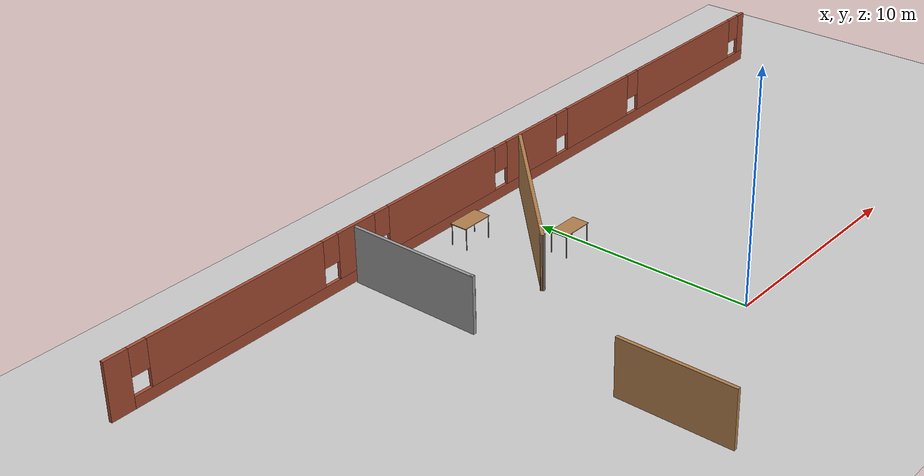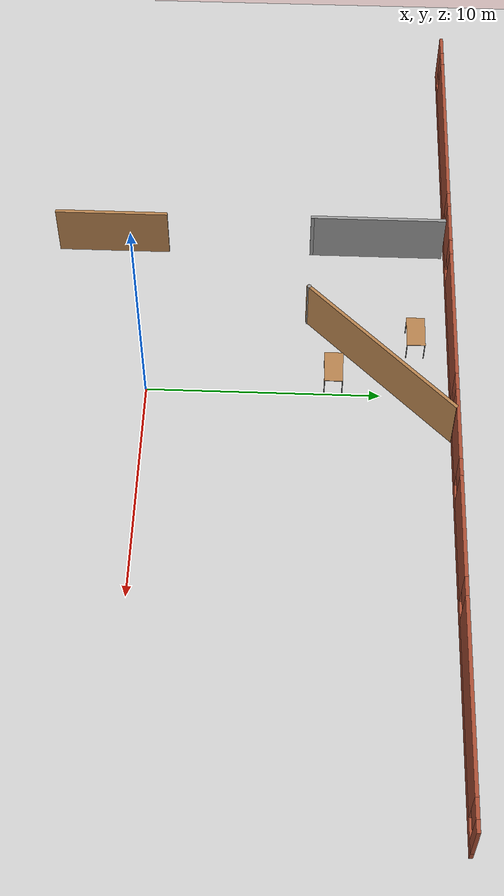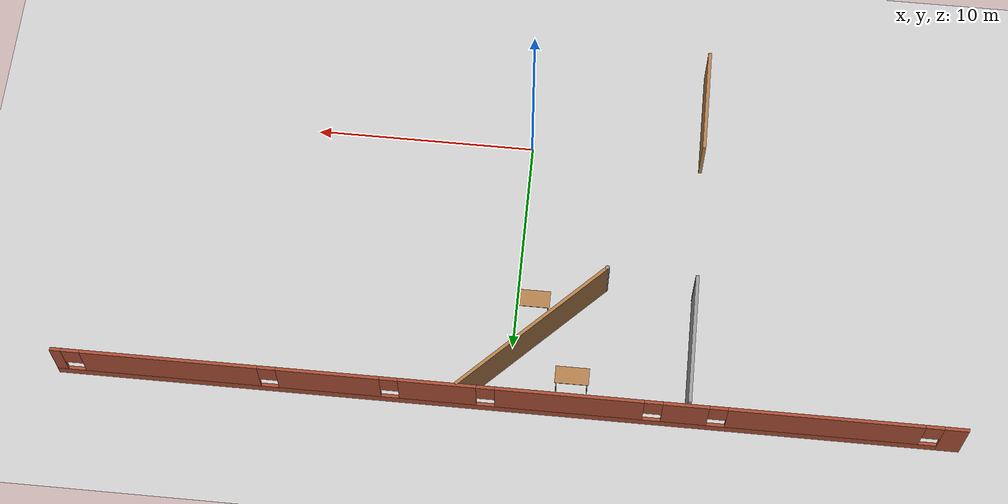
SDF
<sdf version="1.6">
 <world name="default">
  <model name="ground_plane">
   <static>1</static>
   <link name="link">
    <collision name="collision">
     <geometry><plane><normal>0 0 1</normal><size>100 100</size></plane></geometry>
     <surface>
      <contact><collide_bitmask>65535</collide_bitmask></contact>
      <friction><ode><mu>100</mu><mu2>50</mu2></ode></friction>
     </surface>
    </collision>
    <visual name="visual">
     <cast_shadows>0</cast_shadows>
     <geometry><plane><normal>0 0 1</normal><size>100 100</size></plane></geometry>
     <material>
      <script><uri>file://media/materials/scripts/gazebo.material</uri><name>Gazebo/Grey</name></script>
     </material>
    </visual>
   </link>
  </model>
  <model name="table">
   <static>1</static>
   <link name="link">
    <collision name="surface">
     <pose>0 0 1 0 -0 0</pose>
     <geometry><box><size>1.5 0.8 0.03</size></box></geometry>
     <surface><friction><ode><mu>0.6</mu><mu2>0.6</mu2></ode></friction></surface>
    </collision>
    <visual name="visual1">
     <pose>0 0 1 0 -0 0</pose>
     <geometry><box><size>1.5 0.8 0.03</size></box></geometry>
     <material>
      <script><uri>file://media/materials/scripts/gazebo.material</uri><name>Gazebo/Wood</name></script>
     </material>
    </visual>
    <collision name="front_left_leg">
     <pose>0.68 0.38 0.5 0 -0 0</pose>
     <geometry><cylinder><radius>0.02</radius><length>1</length></cylinder></geometry>
    </collision>
    <visual name="front_left_leg">
     <pose>0.68 0.38 0.5 0 -0 0</pose>
     <geometry><cylinder><radius>0.02</radius><length>1</length></cylinder></geometry>
     <material>
      <script><uri>file://media/materials/scripts/gazebo.material</uri><name>Gazebo/Grey</name></script>
     </material>
    </visual>
    <collision name="front_right_leg">
     <pose>0.68 -0.38 0.5 0 -0 0</pose>
     <geometry><cylinder><radius>0.02</radius><length>1</length></cylinder></geometry>
    </collision>
    <visual name="front_right_leg">
     <pose>0.68 -0.38 0.5 0 -0 0</pose>
     <geometry><cylinder><radius>0.02</radius><length>1</length></cylinder></geometry>
     <material>
      <script><uri>file://media/materials/scripts/gazebo.material</uri><name>Gazebo/Grey</name></script>
     </material>
    </visual>
    <collision name="back_right_leg">
     <pose>-0.68 -0.38 0.5 0 -0 0</pose>
     <geometry><cylinder><radius>0.02</radius><length>1</length></cylinder></geometry>
    </collision>
    <visual name="back_right_leg">
     <pose>-0.68 -0.38 0.5 0 -0 0</pose>
     <geometry><cylinder><radius>0.02</radius><length>1</length></cylinder></geometry>
     <material>
      <script><uri>file://media/materials/scripts/gazebo.material</uri><name>Gazebo/Grey</name></script>
     </material>
    </visual>
    <collision name="back_left_leg">
     <pose>-0.68 0.38 0.5 0 -0 0</pose>
     <geometry><cylinder><radius>0.02</radius><length>1</length></cylinder></geometry>
    </collision>
    <visual name="back_left_leg">
     <pose>-0.68 0.38 0.5 0 -0 0</pose>
     <geometry><cylinder><radius>0.02</radius><length>1</length></cylinder></geometry>
     <material>
      <script><uri>file://media/materials/scripts/gazebo.material</uri><name>Gazebo/Grey</name></script>
     </material>
    </visual>
   </link>
   <pose>-2.77138 11.5368 0 0 -0 0</pose>
  </model>
  <model name="table_3">
   <static>1</static>
   <link name="link">
    <collision name="surface">
     <pose>0 0 1 0 -0 0</pose>
     <geometry><box><size>1.5 0.8 0.03</size></box></geometry>
     <surface><friction><ode><mu>0.6</mu><mu2>0.6</mu2></ode></friction></surface>
    </collision>
    <visual name="visual1">
     <pose>0 0 1 0 -0 0</pose>
     <geometry><box><size>1.5 0.8 0.03</size></box></geometry>
     <material>
      <script><uri>file://media/materials/scripts/gazebo.material</uri><name>Gazebo/Wood</name></script>
     </material>
    </visual>
    <collision name="front_left_leg">
     <pose>0.68 0.38 0.5 0 -0 0</pose>
     <geometry><cylinder><radius>0.02</radius><length>1</length></cylinder></geometry>
    </collision>
    <visual name="front_left_leg">
     <pose>0.68 0.38 0.5 0 -0 0</pose>
     <geometry><cylinder><radius>0.02</radius><length>1</length></cylinder></geometry>
     <material>
      <script><uri>file://media/materials/scripts/gazebo.material</uri><name>Gazebo/Grey</name></script>
     </material>
    </visual>
    <collision name="front_right_leg">
     <pose>0.68 -0.38 0.5 0 -0 0</pose>
     <geometry><cylinder><radius>0.02</radius><length>1</length></cylinder></geometry>
    </collision>
    <visual name="front_right_leg">
     <pose>0.68 -0.38 0.5 0 -0 0</pose>
     <geometry><cylinder><radius>0.02</radius><length>1</length></cylinder></geometry>
     <material>
      <script><uri>file://media/materials/scripts/gazebo.material</uri><name>Gazebo/Grey</name></script>
     </material>
    </visual>
    <collision name="back_right_leg">
     <pose>-0.68 -0.38 0.5 0 -0 0</pose>
     <geometry><cylinder><radius>0.02</radius><length>1</length></cylinder></geometry>
    </collision>
    <visual name="back_right_leg">
     <pose>-0.68 -0.38 0.5 0 -0 0</pose>
     <geometry><cylinder><radius>0.02</radius><length>1</length></cylinder></geometry>
     <material>
      <script><uri>file://media/materials/scripts/gazebo.material</uri><name>Gazebo/Grey</name></script>
     </material>
    </visual>
    <collision name="back_left_leg">
     <pose>-0.68 0.38 0.5 0 -0 0</pose>
     <geometry><cylinder><radius>0.02</radius><length>1</length></cylinder></geometry>
    </collision>
    <visual name="back_left_leg">
     <pose>-0.68 0.38 0.5 0 -0 0</pose>
     <geometry><cylinder><radius>0.02</radius><length>1</length></cylinder></geometry>
     <material>
      <script><uri>file://media/materials/scripts/gazebo.material</uri><name>Gazebo/Grey</name></script>
     </material>
    </visual>
   </link>
   <pose>-0.746225 8.0046 0 0 -0 0</pose>
  </model>
  <model name="mybuilding">
   <link name="Wall_45">
    <pose>0.001293 8.80756 0 0 -0 0</pose>
    <visual name="Wall_45_Visual_11">
     <pose>-6.39577 0 1.9 0 -0 0</pose>
     <geometry><box><size>0.8 0.15 1.2</size></box></geometry>
     <material>
      <script><uri>file://media/materials/scripts/gazebo.material</uri><name>Gazebo/Bricks</name></script>
      <ambient>1 1 1 1</ambient>
      <shader type="pixel"/>
      <diffuse>1 1 1 1</diffuse>
      <specular>0.2 0.2 0.2 1</specular>
      <emissive>0 0 0 1</emissive>
     </material>
     <meta><layer>0</layer></meta>
    </visual>
    <visual name="Wall_45_Visual_0">
     <pose>-19.352 0 1.25 0 -0 0</pose>
     <geometry><box><size>1.04606 0.15 2.5</size></box></geometry>
     <material>
      <script><uri>file://media/materials/scripts/gazebo.material</uri><name>Gazebo/Bricks</name></script>
      <ambient>1 1 1 1</ambient>
      <shader type="pixel"/>
      <diffuse>1 1 1 1</diffuse>
      <specular>0.2 0.2 0.2 1</specular>
      <emissive>0 0 0 1</emissive>
     </material>
     <meta><layer>0</layer></meta>
    </visual>
    <visual name="Wall_45_Visual_1">
     <pose>0.523032 0 0.25 0 -0 0</pose>
     <geometry><box><size>38.7039 0.15 0.5</size></box></geometry>
     <material>
      <script><uri>file://media/materials/scripts/gazebo.material</uri><name>Gazebo/Bricks</name></script>
      <ambient>1 1 1 1</ambient>
      <shader type="pixel"/>
      <diffuse>1 1 1 1</diffuse>
      <specular>0.2 0.2 0.2 1</specular>
      <emissive>0 0 0 1</emissive>
     </material>
     <meta><layer>0</layer></meta>
    </visual>
    <visual name="Wall_45_Visual_2">
     <pose>-13.8116 0 1.5 0 -0 0</pose>
     <geometry><box><size>8.43475 0.15 2</size></box></geometry>
     <material>
      <script><uri>file://media/materials/scripts/gazebo.material</uri><name>Gazebo/Bricks</name></script>
      <ambient>1 1 1 1</ambient>
      <shader type="pixel"/>
      <diffuse>1 1 1 1</diffuse>
      <specular>0.2 0.2 0.2 1</specular>
      <emissive>0 0 0 1</emissive>
     </material>
     <meta><layer>0</layer></meta>
    </visual>
    <visual name="Wall_45_Visual_3">
     <pose>-7.79498 0 1.5 0 -0 0</pose>
     <geometry><box><size>1.99841 0.15 2</size></box></geometry>
     <material>
      <script><uri>file://media/materials/scripts/gazebo.material</uri><name>Gazebo/Bricks</name></script>
      <ambient>1 1 1 1</ambient>
      <shader type="pixel"/>
      <diffuse>1 1 1 1</diffuse>
      <specular>0.2 0.2 0.2 1</specular>
      <emissive>0 0 0 1</emissive>
     </material>
     <meta><layer>0</layer></meta>
    </visual>
    <visual name="Wall_45_Visual_4">
     <pose>-2.75784 0 1.5 0 -0 0</pose>
     <geometry><box><size>6.47587 0.15 2</size></box></geometry>
     <material>
      <script><uri>file://media/materials/scripts/gazebo.material</uri><name>Gazebo/Bricks</name></script>
      <ambient>1 1 1 1</ambient>
      <shader type="pixel"/>
      <diffuse>1 1 1 1</diffuse>
      <specular>0.2 0.2 0.2 1</specular>
      <emissive>0 0 0 1</emissive>
     </material>
     <meta><layer>0</layer></meta>
    </visual>
    <visual name="Wall_45_Visual_5">
     <pose>2.9789 0 1.5 0 -0 0</pose>
     <geometry><box><size>3.39762 0.15 2</size></box></geometry>
     <material>
      <script><uri>file://media/materials/scripts/gazebo.material</uri><name>Gazebo/Bricks</name></script>
      <ambient>1 1 1 1</ambient>
      <shader type="pixel"/>
      <diffuse>1 1 1 1</diffuse>
      <specular>0.2 0.2 0.2 1</specular>
      <emissive>0 0 0 1</emissive>
     </material>
     <meta><layer>0</layer></meta>
    </visual>
    <visual name="Wall_45_Visual_6">
     <pose>7.7362 0 1.5 0 -0 0</pose>
     <geometry><box><size>4.51698 0.15 2</size></box></geometry>
     <material>
      <script><uri>file://media/materials/scripts/gazebo.material</uri><name>Gazebo/Bricks</name></script>
      <ambient>1 1 1 1</ambient>
      <shader type="pixel"/>
      <diffuse>1 1 1 1</diffuse>
      <specular>0.2 0.2 0.2 1</specular>
      <emissive>0 0 0 1</emissive>
     </material>
     <meta><layer>0</layer></meta>
    </visual>
    <visual name="Wall_45_Visual_7">
     <pose>14.6891 0 1.5 0 -0 0</pose>
     <geometry><box><size>7.78879 0.15 2</size></box></geometry>
     <material>
      <script><uri>file://media/materials/scripts/gazebo.material</uri><name>Gazebo/Bricks</name></script>
      <ambient>1 1 1 1</ambient>
      <shader type="pixel"/>
      <diffuse>1 1 1 1</diffuse>
      <specular>0.2 0.2 0.2 1</specular>
      <emissive>0 0 0 1</emissive>
     </material>
     <meta><layer>0</layer></meta>
    </visual>
    <visual name="Wall_45_Visual_8">
     <pose>19.6292 0 1.5 0 -0 0</pose>
     <geometry><box><size>0.491526 0.15 2</size></box></geometry>
     <material>
      <script><uri>file://media/materials/scripts/gazebo.material</uri><name>Gazebo/Bricks</name></script>
      <ambient>1 1 1 1</ambient>
      <shader type="pixel"/>
      <diffuse>1 1 1 1</diffuse>
      <specular>0.2 0.2 0.2 1</specular>
      <emissive>0 0 0 1</emissive>
     </material>
     <meta><layer>0</layer></meta>
    </visual>
    <visual name="Wall_45_Visual_9">
     <pose>-18.4289 0 1.9 0 -0 0</pose>
     <geometry><box><size>0.8 0.15 1.2</size></box></geometry>
     <material>
      <script><uri>file://media/materials/scripts/gazebo.material</uri><name>Gazebo/Bricks</name></script>
      <ambient>1 1 1 1</ambient>
      <shader type="pixel"/>
      <diffuse>1 1 1 1</diffuse>
      <specular>0.2 0.2 0.2 1</specular>
      <emissive>0 0 0 1</emissive>
     </material>
     <meta><layer>0</layer></meta>
    </visual>
    <visual name="Wall_45_Visual_10">
     <pose>-9.19418 0 1.9 0 -0 0</pose>
     <geometry><box><size>0.8 0.15 1.2</size></box></geometry>
     <material>
      <script><uri>file://media/materials/scripts/gazebo.material</uri><name>Gazebo/Bricks</name></script>
      <ambient>1 1 1 1</ambient>
      <shader type="pixel"/>
      <diffuse>1 1 1 1</diffuse>
      <specular>0.2 0.2 0.2 1</specular>
      <emissive>0 0 0 1</emissive>
     </material>
     <meta><layer>0</layer></meta>
    </visual>
    <visual name="Wall_45_Visual_12">
     <pose>0.880093 0 1.9 0 -0 0</pose>
     <geometry><box><size>0.8 0.15 1.2</size></box></geometry>
     <material>
      <script><uri>file://media/materials/scripts/gazebo.material</uri><name>Gazebo/Bricks</name></script>
      <ambient>1 1 1 1</ambient>
      <shader type="pixel"/>
      <diffuse>1 1 1 1</diffuse>
      <specular>0.2 0.2 0.2 1</specular>
      <emissive>0 0 0 1</emissive>
     </material>
     <meta><layer>0</layer></meta>
    </visual>
    <visual name="Wall_45_Visual_13">
     <pose>5.07771 0 1.9 0 -0 0</pose>
     <geometry><box><size>0.8 0.15 1.2</size></box></geometry>
     <material>
      <script><uri>file://media/materials/scripts/gazebo.material</uri><name>Gazebo/Bricks</name></script>
      <ambient>1 1 1 1</ambient>
      <shader type="pixel"/>
      <diffuse>1 1 1 1</diffuse>
      <specular>0.2 0.2 0.2 1</specular>
      <emissive>0 0 0 1</emissive>
     </material>
     <meta><layer>0</layer></meta>
    </visual>
    <visual name="Wall_45_Visual_14">
     <pose>10.3947 0 1.9 0 -0 0</pose>
     <geometry><box><size>0.8 0.15 1.2</size></box></geometry>
     <material>
      <script><uri>file://media/materials/scripts/gazebo.material</uri><name>Gazebo/Bricks</name></script>
      <ambient>1 1 1 1</ambient>
      <shader type="pixel"/>
      <diffuse>1 1 1 1</diffuse>
      <specular>0.2 0.2 0.2 1</specular>
      <emissive>0 0 0 1</emissive>
     </material>
     <meta><layer>0</layer></meta>
    </visual>
    <visual name="Wall_45_Visual_15">
     <pose>18.9835 0 1.9 0 -0 0</pose>
     <geometry><box><size>0.8 0.15 1.2</size></box></geometry>
     <material>
      <script><uri>file://media/materials/scripts/gazebo.material</uri><name>Gazebo/Bricks</name></script>
      <ambient>1 1 1 1</ambient>
      <shader type="pixel"/>
      <diffuse>1 1 1 1</diffuse>
      <specular>0.2 0.2 0.2 1</specular>
      <emissive>0 0 0 1</emissive>
     </material>
     <meta><layer>0</layer></meta>
    </visual>
    <collision name="Wall_45_Collision_0">
     <pose>-19.352 0 1.25 0 -0 0</pose>
     <geometry><box><size>1.04606 0.15 2.5</size></box></geometry>
     <surface>
      <friction>
       <ode><mu>1</mu><mu2>1</mu2><fdir1>0 0 0</fdir1><slip1>0</slip1><slip2>0</slip2></ode>
       <torsional>
        <coefficient>1</coefficient>
        <patch_radius>0</patch_radius>
        <surface_radius>0</surface_radius>
        <use_patch_radius>1</use_patch_radius>
        <ode><slip>0</slip></ode>
       </torsional>
      </friction>
      <bounce><restitution_coefficient>0</restitution_coefficient><threshold>1e+06</threshold></bounce>
      <contact>
       <collide_without_contact>0</collide_without_contact>
       <collide_without_contact_bitmask>1</collide_without_contact_bitmask>
       <collide_bitmask>1</collide_bitmask>
       <ode>
        <soft_cfm>0</soft_cfm>
        <soft_erp>0.2</soft_erp>
        <kp>1e+13</kp>
        <kd>1</kd>
        <max_vel>0.01</max_vel>
        <min_depth>0</min_depth>
       </ode>
       <bullet>
        <split_impulse>1</split_impulse>
        <split_impulse_penetration_threshold>-0.01</split_impulse_penetration_threshold>
        <soft_cfm>0</soft_cfm>
        <soft_erp>0.2</soft_erp>
        <kp>1e+13</kp>
        <kd>1</kd>
       </bullet>
      </contact>
     </surface>
    </collision>
    <collision name="Wall_45_Collision_1">
     <pose>0.523032 0 0.25 0 -0 0</pose>
     <geometry><box><size>38.7039 0.15 0.5</size></box></geometry>
     <surface>
      <friction>
       <ode><mu>1</mu><mu2>1</mu2><fdir1>0 0 0</fdir1><slip1>0</slip1><slip2>0</slip2></ode>
       <torsional>
        <coefficient>1</coefficient>
        <patch_radius>0</patch_radius>
        <surface_radius>0</surface_radius>
        <use_patch_radius>1</use_patch_radius>
        <ode><slip>0</slip></ode>
       </torsional>
      </friction>
      <bounce><restitution_coefficient>0</restitution_coefficient><threshold>1e+06</threshold></bounce>
      <contact>
       <collide_without_contact>0</collide_without_contact>
       <collide_without_contact_bitmask>1</collide_without_contact_bitmask>
       <collide_bitmask>1</collide_bitmask>
       <ode>
        <soft_cfm>0</soft_cfm>
        <soft_erp>0.2</soft_erp>
        <kp>1e+13</kp>
        <kd>1</kd>
        <max_vel>0.01</max_vel>
        <min_depth>0</min_depth>
       </ode>
       <bullet>
        <split_impulse>1</split_impulse>
        <split_impulse_penetration_threshold>-0.01</split_impulse_penetration_threshold>
        <soft_cfm>0</soft_cfm>
        <soft_erp>0.2</soft_erp>
        <kp>1e+13</kp>
        <kd>1</kd>
       </bullet>
      </contact>
     </surface>
    </collision>
    <collision name="Wall_45_Collision_2">
     <pose>-13.8116 0 1.5 0 -0 0</pose>
     <geometry><box><size>8.43475 0.15 2</size></box></geometry>
     <surface>
      <friction>
       <ode><mu>1</mu><mu2>1</mu2><fdir1>0 0 0</fdir1><slip1>0</slip1><slip2>0</slip2></ode>
       <torsional>
        <coefficient>1</coefficient>
        <patch_radius>0</patch_radius>
        <surface_radius>0</surface_radius>
        <use_patch_radius>1</use_patch_radius>
        <ode><slip>0</slip></ode>
       </torsional>
      </friction>
      <bounce><restitution_coefficient>0</restitution_coefficient><threshold>1e+06</threshold></bounce>
      <contact>
       <collide_without_contact>0</collide_without_contact>
       <collide_without_contact_bitmask>1</collide_without_contact_bitmask>
       <collide_bitmask>1</collide_bitmask>
       <ode>
        <soft_cfm>0</soft_cfm>
        <soft_erp>0.2</soft_erp>
        <kp>1e+13</kp>
        <kd>1</kd>
        <max_vel>0.01</max_vel>
        <min_depth>0</min_depth>
       </ode>
       <bullet>
        <split_impulse>1</split_impulse>
        <split_impulse_penetration_threshold>-0.01</split_impulse_penetration_threshold>
        <soft_cfm>0</soft_cfm>
        <soft_erp>0.2</soft_erp>
        <kp>1e+13</kp>
        <kd>1</kd>
       </bullet>
      </contact>
     </surface>
    </collision>
    <collision name="Wall_45_Collision_4">
     <pose>-2.75784 0 1.5 0 -0 0</pose>
     <geometry><box><size>6.47587 0.15 2</size></box></geometry>
     <surface>
      <friction>
       <ode><mu>1</mu><mu2>1</mu2><fdir1>0 0 0</fdir1><slip1>0</slip1><slip2>0</slip2></ode>
       <torsional>
        <coefficient>1</coefficient>
        <patch_radius>0</patch_radius>
        <surface_radius>0</surface_radius>
        <use_patch_radius>1</use_patch_radius>
        <ode><slip>0</slip></ode>
       </torsional>
      </friction>
      <bounce><restitution_coefficient>0</restitution_coefficient><threshold>1e+06</threshold></bounce>
      <contact>
       <collide_without_contact>0</collide_without_contact>
       <collide_without_contact_bitmask>1</collide_without_contact_bitmask>
       <collide_bitmask>1</collide_bitmask>
       <ode>
        <soft_cfm>0</soft_cfm>
        <soft_erp>0.2</soft_erp>
        <kp>1e+13</kp>
        <kd>1</kd>
        <max_vel>0.01</max_vel>
        <min_depth>0</min_depth>
       </ode>
       <bullet>
        <split_impulse>1</split_impulse>
        <split_impulse_penetration_threshold>-0.01</split_impulse_penetration_threshold>
        <soft_cfm>0</soft_cfm>
        <soft_erp>0.2</soft_erp>
        <kp>1e+13</kp>
        <kd>1</kd>
       </bullet>
      </contact>
     </surface>
    </collision>
    <collision name="Wall_45_Collision_3">
     <pose>-7.79498 0 1.5 0 -0 0</pose>
     <geometry><box><size>1.99841 0.15 2</size></box></geometry>
     <surface>
      <friction>
       <ode><mu>1</mu><mu2>1</mu2><fdir1>0 0 0</fdir1><slip1>0</slip1><slip2>0</slip2></ode>
       <torsional>
        <coefficient>1</coefficient>
        <patch_radius>0</patch_radius>
        <surface_radius>0</surface_radius>
        <use_patch_radius>1</use_patch_radius>
        <ode><slip>0</slip></ode>
       </torsional>
      </friction>
      <bounce><restitution_coefficient>0</restitution_coefficient><threshold>1e+06</threshold></bounce>
      <contact>
       <collide_without_contact>0</collide_without_contact>
       <collide_without_contact_bitmask>1</collide_without_contact_bitmask>
       <collide_bitmask>1</collide_bitmask>
       <ode>
        <soft_cfm>0</soft_cfm>
        <soft_erp>0.2</soft_erp>
        <kp>1e+13</kp>
        <kd>1</kd>
        <max_vel>0.01</max_vel>
        <min_depth>0</min_depth>
       </ode>
       <bullet>
        <split_impulse>1</split_impulse>
        <split_impulse_penetration_threshold>-0.01</split_impulse_penetration_threshold>
        <soft_cfm>0</soft_cfm>
        <soft_erp>0.2</soft_erp>
        <kp>1e+13</kp>
        <kd>1</kd>
       </bullet>
      </contact>
     </surface>
    </collision>
    <collision name="Wall_45_Collision_5">
     <pose>2.9789 0 1.5 0 -0 0</pose>
     <geometry><box><size>3.39762 0.15 2</size></box></geometry>
     <surface>
      <friction>
       <ode><mu>1</mu><mu2>1</mu2><fdir1>0 0 0</fdir1><slip1>0</slip1><slip2>0</slip2></ode>
       <torsional>
        <coefficient>1</coefficient>
        <patch_radius>0</patch_radius>
        <surface_radius>0</surface_radius>
        <use_patch_radius>1</use_patch_radius>
        <ode><slip>0</slip></ode>
       </torsional>
      </friction>
      <bounce><restitution_coefficient>0</restitution_coefficient><threshold>1e+06</threshold></bounce>
      <contact>
       <collide_without_contact>0</collide_without_contact>
       <collide_without_contact_bitmask>1</collide_without_contact_bitmask>
       <collide_bitmask>1</collide_bitmask>
       <ode>
        <soft_cfm>0</soft_cfm>
        <soft_erp>0.2</soft_erp>
        <kp>1e+13</kp>
        <kd>1</kd>
        <max_vel>0.01</max_vel>
        <min_depth>0</min_depth>
       </ode>
       <bullet>
        <split_impulse>1</split_impulse>
        <split_impulse_penetration_threshold>-0.01</split_impulse_penetration_threshold>
        <soft_cfm>0</soft_cfm>
        <soft_erp>0.2</soft_erp>
        <kp>1e+13</kp>
        <kd>1</kd>
       </bullet>
      </contact>
     </surface>
    </collision>
    <collision name="Wall_45_Collision_6">
     <pose>7.7362 0 1.5 0 -0 0</pose>
     <geometry><box><size>4.51698 0.15 2</size></box></geometry>
     <surface>
      <friction>
       <ode><mu>1</mu><mu2>1</mu2><fdir1>0 0 0</fdir1><slip1>0</slip1><slip2>0</slip2></ode>
       <torsional>
        <coefficient>1</coefficient>
        <patch_radius>0</patch_radius>
        <surface_radius>0</surface_radius>
        <use_patch_radius>1</use_patch_radius>
        <ode><slip>0</slip></ode>
       </torsional>
      </friction>
      <bounce><restitution_coefficient>0</restitution_coefficient><threshold>1e+06</threshold></bounce>
      <contact>
       <collide_without_contact>0</collide_without_contact>
       <collide_without_contact_bitmask>1</collide_without_contact_bitmask>
       <collide_bitmask>1</collide_bitmask>
       <ode>
        <soft_cfm>0</soft_cfm>
        <soft_erp>0.2</soft_erp>
        <kp>1e+13</kp>
        <kd>1</kd>
        <max_vel>0.01</max_vel>
        <min_depth>0</min_depth>
       </ode>
       <bullet>
        <split_impulse>1</split_impulse>
        <split_impulse_penetration_threshold>-0.01</split_impulse_penetration_threshold>
        <soft_cfm>0</soft_cfm>
        <soft_erp>0.2</soft_erp>
        <kp>1e+13</kp>
        <kd>1</kd>
       </bullet>
      </contact>
     </surface>
    </collision>
    <collision name="Wall_45_Collision_8">
     <pose>19.6292 0 1.5 0 -0 0</pose>
     <geometry><box><size>0.491526 0.15 2</size></box></geometry>
     <surface>
      <friction>
       <ode><mu>1</mu><mu2>1</mu2><fdir1>0 0 0</fdir1><slip1>0</slip1><slip2>0</slip2></ode>
       <torsional>
        <coefficient>1</coefficient>
        <patch_radius>0</patch_radius>
        <surface_radius>0</surface_radius>
        <use_patch_radius>1</use_patch_radius>
        <ode><slip>0</slip></ode>
       </torsional>
      </friction>
      <bounce><restitution_coefficient>0</restitution_coefficient><threshold>1e+06</threshold></bounce>
      <contact>
       <collide_without_contact>0</collide_without_contact>
       <collide_without_contact_bitmask>1</collide_without_contact_bitmask>
       <collide_bitmask>1</collide_bitmask>
       <ode>
        <soft_cfm>0</soft_cfm>
        <soft_erp>0.2</soft_erp>
        <kp>1e+13</kp>
        <kd>1</kd>
        <max_vel>0.01</max_vel>
        <min_depth>0</min_depth>
       </ode>
       <bullet>
        <split_impulse>1</split_impulse>
        <split_impulse_penetration_threshold>-0.01</split_impulse_penetration_threshold>
        <soft_cfm>0</soft_cfm>
        <soft_erp>0.2</soft_erp>
        <kp>1e+13</kp>
        <kd>1</kd>
       </bullet>
      </contact>
     </surface>
    </collision>
    <collision name="Wall_45_Collision_7">
     <pose>14.6891 0 1.5 0 -0 0</pose>
     <geometry><box><size>7.78879 0.15 2</size></box></geometry>
     <surface>
      <friction>
       <ode><mu>1</mu><mu2>1</mu2><fdir1>0 0 0</fdir1><slip1>0</slip1><slip2>0</slip2></ode>
       <torsional>
        <coefficient>1</coefficient>
        <patch_radius>0</patch_radius>
        <surface_radius>0</surface_radius>
        <use_patch_radius>1</use_patch_radius>
        <ode><slip>0</slip></ode>
       </torsional>
      </friction>
      <bounce><restitution_coefficient>0</restitution_coefficient><threshold>1e+06</threshold></bounce>
      <contact>
       <collide_without_contact>0</collide_without_contact>
       <collide_without_contact_bitmask>1</collide_without_contact_bitmask>
       <collide_bitmask>1</collide_bitmask>
       <ode>
        <soft_cfm>0</soft_cfm>
        <soft_erp>0.2</soft_erp>
        <kp>1e+13</kp>
        <kd>1</kd>
        <max_vel>0.01</max_vel>
        <min_depth>0</min_depth>
       </ode>
       <bullet>
        <split_impulse>1</split_impulse>
        <split_impulse_penetration_threshold>-0.01</split_impulse_penetration_threshold>
        <soft_cfm>0</soft_cfm>
        <soft_erp>0.2</soft_erp>
        <kp>1e+13</kp>
        <kd>1</kd>
       </bullet>
      </contact>
     </surface>
    </collision>
    <collision name="Wall_45_Collision_9">
     <pose>-18.4289 0 1.9 0 -0 0</pose>
     <geometry><box><size>0.8 0.15 1.2</size></box></geometry>
     <surface>
      <friction>
       <ode><mu>1</mu><mu2>1</mu2><fdir1>0 0 0</fdir1><slip1>0</slip1><slip2>0</slip2></ode>
       <torsional>
        <coefficient>1</coefficient>
        <patch_radius>0</patch_radius>
        <surface_radius>0</surface_radius>
        <use_patch_radius>1</use_patch_radius>
        <ode><slip>0</slip></ode>
       </torsional>
      </friction>
      <bounce><restitution_coefficient>0</restitution_coefficient><threshold>1e+06</threshold></bounce>
      <contact>
       <collide_without_contact>0</collide_without_contact>
       <collide_without_contact_bitmask>1</collide_without_contact_bitmask>
       <collide_bitmask>1</collide_bitmask>
       <ode>
        <soft_cfm>0</soft_cfm>
        <soft_erp>0.2</soft_erp>
        <kp>1e+13</kp>
        <kd>1</kd>
        <max_vel>0.01</max_vel>
        <min_depth>0</min_depth>
       </ode>
       <bullet>
        <split_impulse>1</split_impulse>
        <split_impulse_penetration_threshold>-0.01</split_impulse_penetration_threshold>
        <soft_cfm>0</soft_cfm>
        <soft_erp>0.2</soft_erp>
        <kp>1e+13</kp>
        <kd>1</kd>
       </bullet>
      </contact>
     </surface>
    </collision>
    <collision name="Wall_45_Collision_10">
     <pose>-9.19418 0 1.9 0 -0 0</pose>
     <geometry><box><size>0.8 0.15 1.2</size></box></geometry>
     <surface>
      <friction>
       <ode><mu>1</mu><mu2>1</mu2><fdir1>0 0 0</fdir1><slip1>0</slip1><slip2>0</slip2></ode>
       <torsional>
        <coefficient>1</coefficient>
        <patch_radius>0</patch_radius>
        <surface_radius>0</surface_radius>
        <use_patch_radius>1</use_patch_radius>
        <ode><slip>0</slip></ode>
       </torsional>
      </friction>
      <bounce><restitution_coefficient>0</restitution_coefficient><threshold>1e+06</threshold></bounce>
      <contact>
       <collide_without_contact>0</collide_without_contact>
       <collide_without_contact_bitmask>1</collide_without_contact_bitmask>
       <collide_bitmask>1</collide_bitmask>
       <ode>
        <soft_cfm>0</soft_cfm>
        <soft_erp>0.2</soft_erp>
        <kp>1e+13</kp>
        <kd>1</kd>
        <max_vel>0.01</max_vel>
        <min_depth>0</min_depth>
       </ode>
       <bullet>
        <split_impulse>1</split_impulse>
        <split_impulse_penetration_threshold>-0.01</split_impulse_penetration_threshold>
        <soft_cfm>0</soft_cfm>
        <soft_erp>0.2</soft_erp>
        <kp>1e+13</kp>
        <kd>1</kd>
       </bullet>
      </contact>
     </surface>
    </collision>
    <collision name="Wall_45_Collision_11">
     <pose>-6.39577 0 1.9 0 -0 0</pose>
     <geometry><box><size>0.8 0.15 1.2</size></box></geometry>
     <surface>
      <friction>
       <ode><mu>1</mu><mu2>1</mu2><fdir1>0 0 0</fdir1><slip1>0</slip1><slip2>0</slip2></ode>
       <torsional>
        <coefficient>1</coefficient>
        <patch_radius>0</patch_radius>
        <surface_radius>0</surface_radius>
        <use_patch_radius>1</use_patch_radius>
        <ode><slip>0</slip></ode>
       </torsional>
      </friction>
      <bounce><restitution_coefficient>0</restitution_coefficient><threshold>1e+06</threshold></bounce>
      <contact>
       <collide_without_contact>0</collide_without_contact>
       <collide_without_contact_bitmask>1</collide_without_contact_bitmask>
       <collide_bitmask>1</collide_bitmask>
       <ode>
        <soft_cfm>0</soft_cfm>
        <soft_erp>0.2</soft_erp>
        <kp>1e+13</kp>
        <kd>1</kd>
        <max_vel>0.01</max_vel>
        <min_depth>0</min_depth>
       </ode>
       <bullet>
        <split_impulse>1</split_impulse>
        <split_impulse_penetration_threshold>-0.01</split_impulse_penetration_threshold>
        <soft_cfm>0</soft_cfm>
        <soft_erp>0.2</soft_erp>
        <kp>1e+13</kp>
        <kd>1</kd>
       </bullet>
      </contact>
     </surface>
    </collision>
    <collision name="Wall_45_Collision_13">
     <pose>5.07771 0 1.9 0 -0 0</pose>
     <geometry><box><size>0.8 0.15 1.2</size></box></geometry>
     <surface>
      <friction>
       <ode><mu>1</mu><mu2>1</mu2><fdir1>0 0 0</fdir1><slip1>0</slip1><slip2>0</slip2></ode>
       <torsional>
        <coefficient>1</coefficient>
        <patch_radius>0</patch_radius>
        <surface_radius>0</surface_radius>
        <use_patch_radius>1</use_patch_radius>
        <ode><slip>0</slip></ode>
       </torsional>
      </friction>
      <bounce><restitution_coefficient>0</restitution_coefficient><threshold>1e+06</threshold></bounce>
      <contact>
       <collide_without_contact>0</collide_without_contact>
       <collide_without_contact_bitmask>1</collide_without_contact_bitmask>
       <collide_bitmask>1</collide_bitmask>
       <ode>
        <soft_cfm>0</soft_cfm>
        <soft_erp>0.2</soft_erp>
        <kp>1e+13</kp>
        <kd>1</kd>
        <max_vel>0.01</max_vel>
        <min_depth>0</min_depth>
       </ode>
       <bullet>
        <split_impulse>1</split_impulse>
        <split_impulse_penetration_threshold>-0.01</split_impulse_penetration_threshold>
        <soft_cfm>0</soft_cfm>
        <soft_erp>0.2</soft_erp>
        <kp>1e+13</kp>
        <kd>1</kd>
       </bullet>
      </contact>
     </surface>
    </collision>
    <collision name="Wall_45_Collision_12">
     <pose>0.880093 0 1.9 0 -0 0</pose>
     <geometry><box><size>0.8 0.15 1.2</size></box></geometry>
     <surface>
      <friction>
       <ode><mu>1</mu><mu2>1</mu2><fdir1>0 0 0</fdir1><slip1>0</slip1><slip2>0</slip2></ode>
       <torsional>
        <coefficient>1</coefficient>
        <patch_radius>0</patch_radius>
        <surface_radius>0</surface_radius>
        <use_patch_radius>1</use_patch_radius>
        <ode><slip>0</slip></ode>
       </torsional>
      </friction>
      <bounce><restitution_coefficient>0</restitution_coefficient><threshold>1e+06</threshold></bounce>
      <contact>
       <collide_without_contact>0</collide_without_contact>
       <collide_without_contact_bitmask>1</collide_without_contact_bitmask>
       <collide_bitmask>1</collide_bitmask>
       <ode>
        <soft_cfm>0</soft_cfm>
        <soft_erp>0.2</soft_erp>
        <kp>1e+13</kp>
        <kd>1</kd>
        <max_vel>0.01</max_vel>
        <min_depth>0</min_depth>
       </ode>
       <bullet>
        <split_impulse>1</split_impulse>
        <split_impulse_penetration_threshold>-0.01</split_impulse_penetration_threshold>
        <soft_cfm>0</soft_cfm>
        <soft_erp>0.2</soft_erp>
        <kp>1e+13</kp>
        <kd>1</kd>
       </bullet>
      </contact>
     </surface>
    </collision>
    <collision name="Wall_45_Collision_14">
     <pose>10.3947 0 1.9 0 -0 0</pose>
     <geometry><box><size>0.8 0.15 1.2</size></box></geometry>
     <surface>
      <friction>
       <ode><mu>1</mu><mu2>1</mu2><fdir1>0 0 0</fdir1><slip1>0</slip1><slip2>0</slip2></ode>
       <torsional>
        <coefficient>1</coefficient>
        <patch_radius>0</patch_radius>
        <surface_radius>0</surface_radius>
        <use_patch_radius>1</use_patch_radius>
        <ode><slip>0</slip></ode>
       </torsional>
      </friction>
      <bounce><restitution_coefficient>0</restitution_coefficient><threshold>1e+06</threshold></bounce>
      <contact>
       <collide_without_contact>0</collide_without_contact>
       <collide_without_contact_bitmask>1</collide_without_contact_bitmask>
       <collide_bitmask>1</collide_bitmask>
       <ode>
        <soft_cfm>0</soft_cfm>
        <soft_erp>0.2</soft_erp>
        <kp>1e+13</kp>
        <kd>1</kd>
        <max_vel>0.01</max_vel>
        <min_depth>0</min_depth>
       </ode>
       <bullet>
        <split_impulse>1</split_impulse>
        <split_impulse_penetration_threshold>-0.01</split_impulse_penetration_threshold>
        <soft_cfm>0</soft_cfm>
        <soft_erp>0.2</soft_erp>
        <kp>1e+13</kp>
        <kd>1</kd>
       </bullet>
      </contact>
     </surface>
    </collision>
    <collision name="Wall_45_Collision_15">
     <pose>18.9835 0 1.9 0 -0 0</pose>
     <geometry><box><size>0.8 0.15 1.2</size></box></geometry>
     <surface>
      <friction>
       <ode><mu>1</mu><mu2>1</mu2><fdir1>0 0 0</fdir1><slip1>0</slip1><slip2>0</slip2></ode>
       <torsional>
        <coefficient>1</coefficient>
        <patch_radius>0</patch_radius>
        <surface_radius>0</surface_radius>
        <use_patch_radius>1</use_patch_radius>
        <ode><slip>0</slip></ode>
       </torsional>
      </friction>
      <bounce><restitution_coefficient>0</restitution_coefficient><threshold>1e+06</threshold></bounce>
      <contact>
       <collide_without_contact>0</collide_without_contact>
       <collide_without_contact_bitmask>1</collide_without_contact_bitmask>
       <collide_bitmask>1</collide_bitmask>
       <ode>
        <soft_cfm>0</soft_cfm>
        <soft_erp>0.2</soft_erp>
        <kp>1e+13</kp>
        <kd>1</kd>
        <max_vel>0.01</max_vel>
        <min_depth>0</min_depth>
       </ode>
       <bullet>
        <split_impulse>1</split_impulse>
        <split_impulse_penetration_threshold>-0.01</split_impulse_penetration_threshold>
        <soft_cfm>0</soft_cfm>
        <soft_erp>0.2</soft_erp>
        <kp>1e+13</kp>
        <kd>1</kd>
       </bullet>
      </contact>
     </surface>
    </collision>
   </link>
   <link name="Wall_59">
    <pose>-7.88431 -6.2675 0 0 0 -1.5708</pose>
    <visual name="Wall_59_Visual">
     <pose>0 0 1.25 0 -0 0</pose>
     <geometry><box><size>5 0.15 2.5</size></box></geometry>
     <material>
      <script><uri>file://media/materials/scripts/gazebo.material</uri><name>Gazebo/Wood</name></script>
      <ambient>1 1 1 1</ambient>
      <shader type="pixel"/>
      <diffuse>1 1 1 1</diffuse>
      <specular>0.2 0.2 0.2 1</specular>
      <emissive>0 0 0 1</emissive>
     </material>
     <meta><layer>0</layer></meta>
    </visual>
    <collision name="Wall_59_Collision">
     <pose>0 0 1.25 0 -0 0</pose>
     <geometry><box><size>5 0.15 2.5</size></box></geometry>
     <surface>
      <friction>
       <ode><mu>1</mu><mu2>1</mu2><fdir1>0 0 0</fdir1><slip1>0</slip1><slip2>0</slip2></ode>
       <torsional>
        <coefficient>1</coefficient>
        <patch_radius>0</patch_radius>
        <surface_radius>0</surface_radius>
        <use_patch_radius>1</use_patch_radius>
        <ode><slip>0</slip></ode>
       </torsional>
      </friction>
      <bounce><restitution_coefficient>0</restitution_coefficient><threshold>1e+06</threshold></bounce>
      <contact>
       <collide_without_contact>0</collide_without_contact>
       <collide_without_contact_bitmask>1</collide_without_contact_bitmask>
       <collide_bitmask>1</collide_bitmask>
       <ode>
        <soft_cfm>0</soft_cfm>
        <soft_erp>0.2</soft_erp>
        <kp>1e+13</kp>
        <kd>1</kd>
        <max_vel>0.01</max_vel>
        <min_depth>0</min_depth>
       </ode>
       <bullet>
        <split_impulse>1</split_impulse>
        <split_impulse_penetration_threshold>-0.01</split_impulse_penetration_threshold>
        <soft_cfm>0</soft_cfm>
        <soft_erp>0.2</soft_erp>
        <kp>1e+13</kp>
        <kd>1</kd>
       </bullet>
      </contact>
     </surface>
    </collision>
   </link>
   <link name="Wall_70">
    <pose>-0.903867 5.67115 0 0 0 -2.35619</pose>
    <visual name="Wall_70_Visual">
     <pose>0 0 1.25 0 -0 0</pose>
     <geometry><box><size>8.75 0.15 2.5</size></box></geometry>
     <material>
      <script><uri>file://media/materials/scripts/gazebo.material</uri><name>Gazebo/Wood</name></script>
      <ambient>1 1 1 1</ambient>
      <shader type="pixel"/>
      <diffuse>1 1 1 1</diffuse>
      <specular>0.2 0.2 0.2 1</specular>
      <emissive>0 0 0 1</emissive>
     </material>
     <meta><layer>0</layer></meta>
    </visual>
    <collision name="Wall_70_Collision">
     <pose>0 0 1.25 0 -0 0</pose>
     <geometry><box><size>8.75 0.15 2.5</size></box></geometry>
     <surface>
      <friction>
       <ode><mu>1</mu><mu2>1</mu2><fdir1>0 0 0</fdir1><slip1>0</slip1><slip2>0</slip2></ode>
       <torsional>
        <coefficient>1</coefficient>
        <patch_radius>0</patch_radius>
        <surface_radius>0</surface_radius>
        <use_patch_radius>1</use_patch_radius>
        <ode><slip>0</slip></ode>
       </torsional>
      </friction>
      <bounce><restitution_coefficient>0</restitution_coefficient><threshold>1e+06</threshold></bounce>
      <contact>
       <collide_without_contact>0</collide_without_contact>
       <collide_without_contact_bitmask>1</collide_without_contact_bitmask>
       <collide_bitmask>1</collide_bitmask>
       <ode>
        <soft_cfm>0</soft_cfm>
        <soft_erp>0.2</soft_erp>
        <kp>1e+13</kp>
        <kd>1</kd>
        <max_vel>0.01</max_vel>
        <min_depth>0</min_depth>
       </ode>
       <bullet>
        <split_impulse>1</split_impulse>
        <split_impulse_penetration_threshold>-0.01</split_impulse_penetration_threshold>
        <soft_cfm>0</soft_cfm>
        <soft_erp>0.2</soft_erp>
        <kp>1e+13</kp>
        <kd>1</kd>
       </bullet>
      </contact>
     </surface>
    </collision>
   </link>
   <link name="Wall_71">
    <pose>-3.93943 2.63059 0 0 -0 0</pose>
    <visual name="Wall_71_Visual">
     <pose>0 0 1.25 0 -0 0</pose>
     <geometry><box><size>0.16 0.15 2.5</size></box></geometry>
     <material>
      <script><uri>file://media/materials/scripts/gazebo.material</uri><name>Gazebo/Grey</name></script>
      <ambient>1 1 1 1</ambient>
      <shader type="pixel"/>
      <diffuse>0.7 0.7 0.7 1</diffuse>
      <specular>0.01 0.01 0.01 1</specular>
      <emissive>0 0 0 1</emissive>
     </material>
     <meta><layer>0</layer></meta>
    </visual>
    <collision name="Wall_71_Collision">
     <pose>0 0 1.25 0 -0 0</pose>
     <geometry><box><size>0.16 0.15 2.5</size></box></geometry>
     <surface>
      <friction>
       <ode><mu>1</mu><mu2>1</mu2><fdir1>0 0 0</fdir1><slip1>0</slip1><slip2>0</slip2></ode>
       <torsional>
        <coefficient>1</coefficient>
        <patch_radius>0</patch_radius>
        <surface_radius>0</surface_radius>
        <use_patch_radius>1</use_patch_radius>
        <ode><slip>0</slip></ode>
       </torsional>
      </friction>
      <bounce><restitution_coefficient>0</restitution_coefficient><threshold>1e+06</threshold></bounce>
      <contact>
       <collide_without_contact>0</collide_without_contact>
       <collide_without_contact_bitmask>1</collide_without_contact_bitmask>
       <collide_bitmask>1</collide_bitmask>
       <ode>
        <soft_cfm>0</soft_cfm>
        <soft_erp>0.2</soft_erp>
        <kp>1e+13</kp>
        <kd>1</kd>
        <max_vel>0.01</max_vel>
        <min_depth>0</min_depth>
       </ode>
       <bullet>
        <split_impulse>1</split_impulse>
        <split_impulse_penetration_threshold>-0.01</split_impulse_penetration_threshold>
        <soft_cfm>0</soft_cfm>
        <soft_erp>0.2</soft_erp>
        <kp>1e+13</kp>
        <kd>1</kd>
       </bullet>
      </contact>
     </surface>
    </collision>
   </link>
   <link name="Wall_73">
    <pose>-7.93758 5.64679 0 0 0 -1.5708</pose>
    <visual name="Wall_73_Visual">
     <pose>0 0 1.25 0 -0 0</pose>
     <geometry><box><size>6 0.15 2.5</size></box></geometry>
     <material>
      <script><uri>file://media/materials/scripts/gazebo.material</uri><name>Gazebo/Grey</name></script>
      <ambient>1 1 1 1</ambient>
      <shader type="pixel"/>
      <diffuse>0.7 0.7 0.7 1</diffuse>
      <specular>0.01 0.01 0.01 1</specular>
      <emissive>0 0 0 1</emissive>
     </material>
     <meta><layer>0</layer></meta>
    </visual>
    <collision name="Wall_73_Collision">
     <pose>0 0 1.25 0 -0 0</pose>
     <geometry><box><size>6 0.15 2.5</size></box></geometry>
     <surface>
      <friction>
       <ode><mu>1</mu><mu2>1</mu2><fdir1>0 0 0</fdir1><slip1>0</slip1><slip2>0</slip2></ode>
       <torsional>
        <coefficient>1</coefficient>
        <patch_radius>0</patch_radius>
        <surface_radius>0</surface_radius>
        <use_patch_radius>1</use_patch_radius>
        <ode><slip>0</slip></ode>
       </torsional>
      </friction>
      <bounce><restitution_coefficient>0</restitution_coefficient><threshold>1e+06</threshold></bounce>
      <contact>
       <collide_without_contact>0</collide_without_contact>
       <collide_without_contact_bitmask>1</collide_without_contact_bitmask>
       <collide_bitmask>1</collide_bitmask>
       <ode>
        <soft_cfm>0</soft_cfm>
        <soft_erp>0.2</soft_erp>
        <kp>1e+13</kp>
        <kd>1</kd>
        <max_vel>0.01</max_vel>
        <min_depth>0</min_depth>
       </ode>
       <bullet>
        <split_impulse>1</split_impulse>
        <split_impulse_penetration_threshold>-0.01</split_impulse_penetration_threshold>
        <soft_cfm>0</soft_cfm>
        <soft_erp>0.2</soft_erp>
        <kp>1e+13</kp>
        <kd>1</kd>
       </bullet>
      </contact>
     </surface>
    </collision>
   </link>
   <link name="Wall_74">
    <pose>-7.93258 2.72179 0 0 -0 0</pose>
    <visual name="Wall_74_Visual">
     <pose>0 0 1.25 0 -0 0</pose>
     <geometry><box><size>0.16 0.15 2.5</size></box></geometry>
     <material>
      <script><uri>file://media/materials/scripts/gazebo.material</uri><name>Gazebo/Grey</name></script>
      <ambient>1 1 1 1</ambient>
      <shader type="pixel"/>
      <diffuse>0.7 0.7 0.7 1</diffuse>
      <specular>0.01 0.01 0.01 1</specular>
      <emissive>0 0 0 1</emissive>
     </material>
     <meta><layer>0</layer></meta>
    </visual>
    <collision name="Wall_74_Collision">
     <pose>0 0 1.25 0 -0 0</pose>
     <geometry><box><size>0.16 0.15 2.5</size></box></geometry>
     <surface>
      <friction>
       <ode><mu>1</mu><mu2>1</mu2><fdir1>0 0 0</fdir1><slip1>0</slip1><slip2>0</slip2></ode>
       <torsional>
        <coefficient>1</coefficient>
        <patch_radius>0</patch_radius>
        <surface_radius>0</surface_radius>
        <use_patch_radius>1</use_patch_radius>
        <ode><slip>0</slip></ode>
       </torsional>
      </friction>
      <bounce><restitution_coefficient>0</restitution_coefficient><threshold>1e+06</threshold></bounce>
      <contact>
       <collide_without_contact>0</collide_without_contact>
       <collide_without_contact_bitmask>1</collide_without_contact_bitmask>
       <collide_bitmask>1</collide_bitmask>
       <ode>
        <soft_cfm>0</soft_cfm>
        <soft_erp>0.2</soft_erp>
        <kp>1e+13</kp>
        <kd>1</kd>
        <max_vel>0.01</max_vel>
        <min_depth>0</min_depth>
       </ode>
       <bullet>
        <split_impulse>1</split_impulse>
        <split_impulse_penetration_threshold>-0.01</split_impulse_penetration_threshold>
        <soft_cfm>0</soft_cfm>
        <soft_erp>0.2</soft_erp>
        <kp>1e+13</kp>
        <kd>1</kd>
       </bullet>
      </contact>
     </surface>
    </collision>
   </link>
   <static>1</static>
   <pose>0.027091 4.22979 0 0 -0 0</pose>
  </model>
 </world>
</sdf>
